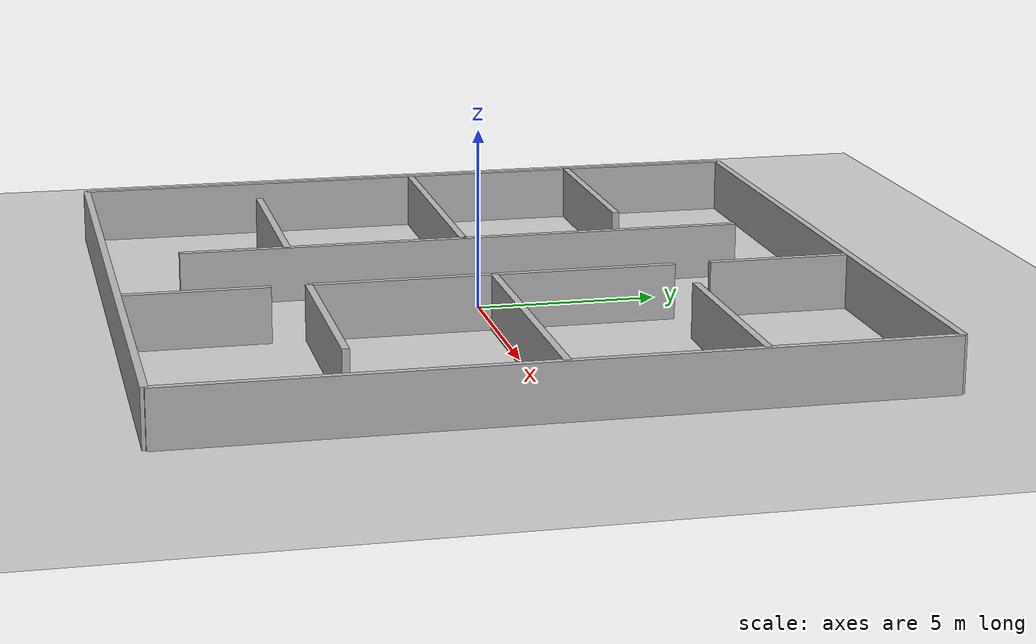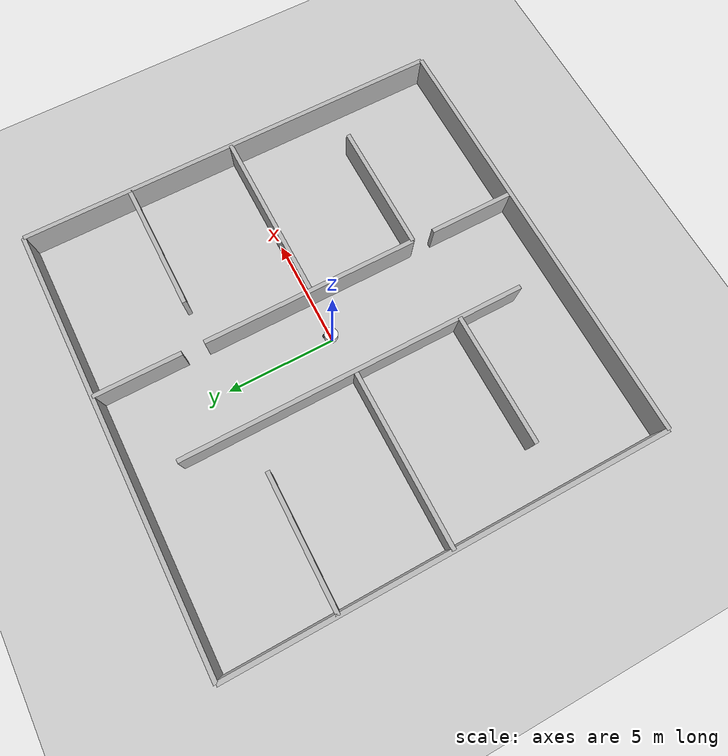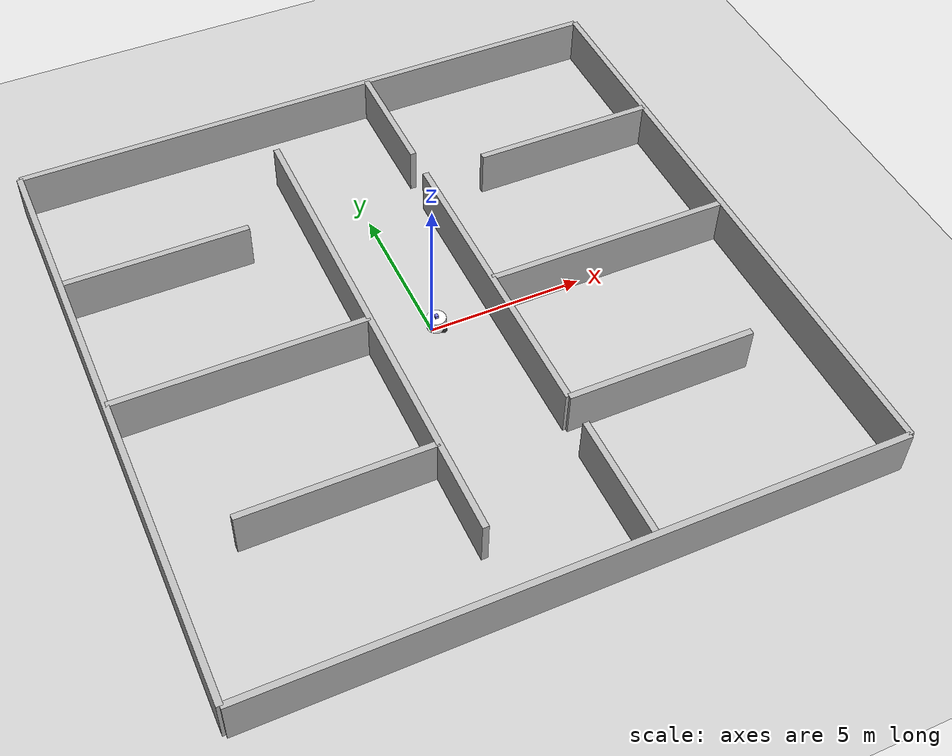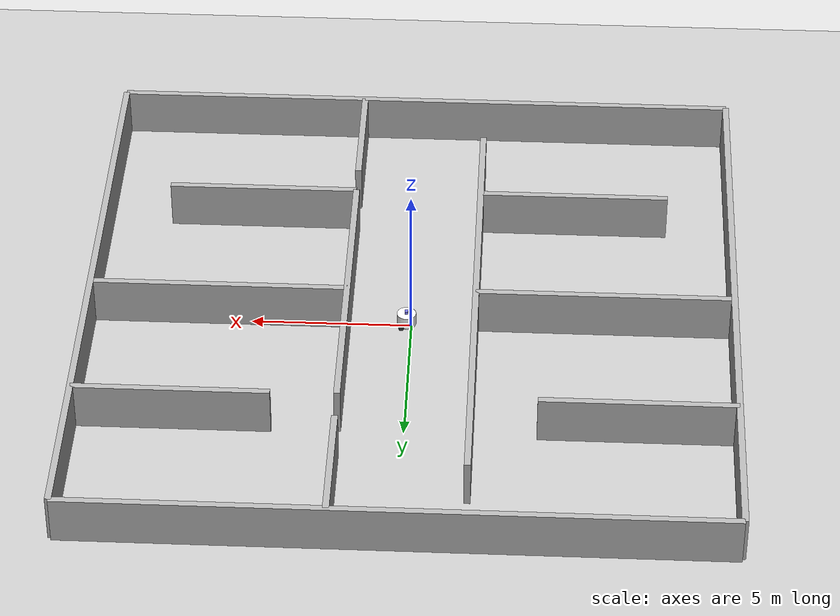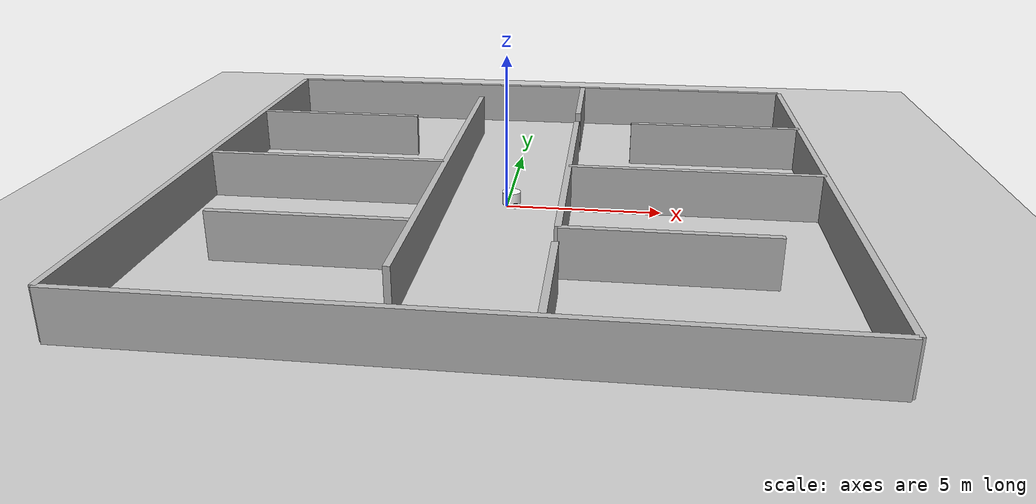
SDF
<?xml version="1.0" ?>
<sdf version="1.6">
  <world name="diff_drive">

    <physics name="1ms" type="ignored">
      <max_step_size>0.001</max_step_size>
      <real_time_factor>1.0</real_time_factor>
    </physics>
    <plugin
      filename="ignition-gazebo-physics-system"
      name="ignition::gazebo::systems::Physics">
    </plugin>
    <plugin
      filename="ignition-gazebo-user-commands-system"
      name="ignition::gazebo::systems::UserCommands">
    </plugin>
    <plugin
      filename="ignition-gazebo-scene-broadcaster-system"
      name="ignition::gazebo::systems::SceneBroadcaster">
    </plugin>

    <plugin
      filename="libignition-gazebo-sensors-system.so"
      name="ignition::gazebo::systems::Sensors">
      <render_engine>ogre</render_engine>
    </plugin>

    <light type="directional" name="sun">
      <cast_shadows>true</cast_shadows>
      <pose>0 0 10 0 0 0</pose>
      <diffuse>1 1 1 1</diffuse>
      <specular>0.5 0.5 0.5 1</specular>
      <attenuation>
        <range>1000</range>
        <constant>0.9</constant>
        <linear>0.01</linear>
        <quadratic>0.001</quadratic>
      </attenuation>
      <direction>-0.5 0.1 -0.9</direction>
    </light>

    <model name="ground_plane">
      <static>true</static>
      <link name="link">
        <collision name="collision">
          <geometry>
            <plane>
              <normal>0 0 1</normal>
            </plane>
          </geometry>
        </collision>
        <visual name="visual">
          <geometry>
            <plane>
              <normal>0 0 1</normal>
              <size>100 100</size>
            </plane>
          </geometry>
          <material>
            <ambient>0.8 0.8 0.8 1</ambient>
            <diffuse>0.8 0.8 0.8 1</diffuse>
            <specular>0.8 0.8 0.8 1</specular>
          </material>
        </visual>
      </link>
    </model>

    <model name="wall">
      <pose>10 0 0.5 0 0 0</pose>
      <link name="body">
        <collision name="collision1">
          <geometry>
            <box>
              <size>0.2 20 2</size>
            </box>
          </geometry>
        </collision>
        <visual name="visual1">
          <geometry>
            <box>
              <size>0.2 20 2</size>
            </box>
          </geometry>
        </visual>
      </link>
    </model>

    <model name="wall1">
      <pose>-10 0 0.5 0 0 0</pose>
      <link name="body">
        <collision name="collision1">
          <geometry>
            <box>
              <size>0.2 20 2</size>
            </box>
          </geometry>
        </collision>
        <visual name="visual1">
          <geometry>
            <box>
              <size>0.2 20 2</size>
            </box>
          </geometry>
        </visual>
      </link>
    </model>

    <model name="wall2">
      <pose>0 10 0.5 0 0 0</pose>
      <link name="body">
        <collision name="collision1">
          <geometry>
            <box>
              <size>20 0.2 2</size>
            </box>
          </geometry>
        </collision>
        <visual name="visual1">
          <geometry>
            <box>
              <size>20 0.2 2</size>
            </box>
          </geometry>
        </visual>
      </link>
    </model>

    <model name="wall3">
      <pose>0 -10 0.5 0 0 0</pose>
      <link name="body">
        <collision name="collision1">
          <geometry>
            <box>
              <size>20 0.2 2</size>
            </box>
          </geometry>
        </collision>
        <visual name="visual1">
          <geometry>
            <box>
              <size>20 0.2 2</size>
            </box>
          </geometry>
        </visual>
      </link>
    </model>

    <model name="roomwall">
      <pose>2 0 0.5 0 0 0</pose>
      <link name="body">
        <collision name="collision1">
          <geometry>
            <box>
              <size>0.2 10 2</size>
            </box>
          </geometry>
        </collision>
        <visual name="visual1">
          <geometry>
            <box>
              <size>0.2 10 2</size>
            </box>
          </geometry>
        </visual>
      </link>
    </model>

    <model name="roomwall2">
      <pose>6 0 0.5 0 0 0</pose>
      <link name="body">
        <collision name="collision1">
          <geometry>
            <box>
              <size>8 0.2 2</size>
            </box>
          </geometry>
        </collision>
        <visual name="visual1">
          <geometry>
            <box>
              <size>8 0.2 2</size>
            </box>
          </geometry>
        </visual>
      </link>
    </model>

    <model name="roomwall3">
      <pose>2 8 0.5 0 0 0</pose>
      <link name="body">
        <collision name="collision1">
          <geometry>
            <box>
              <size>0.2 4 2</size>
            </box>
          </geometry>
        </collision>
        <visual name="visual1">
          <geometry>
            <box>
              <size>0.2 4 2</size>
            </box>
          </geometry>
        </visual>
      </link>
    </model>

    <model name="roomwall4">
      <pose>2 -8 0.5 0 0 0</pose>
      <link name="body">
        <collision name="collision1">
          <geometry>
            <box>
              <size>0.2 4 2</size>
            </box>
          </geometry>
        </collision>
        <visual name="visual1">
          <geometry>
            <box>
              <size>0.2 4 2</size>
            </box>
          </geometry>
        </visual>
      </link>
    </model>

    <model name="roomwall5">
      <pose>-2 0 0.5 0 0 0</pose>
      <link name="body">
        <collision name="collision1">
          <geometry>
            <box>
              <size>0.2 16 2</size>
            </box>
          </geometry>
        </collision>
        <visual name="visual1">
          <geometry>
            <box>
              <size>0.2 16 2</size>
            </box>
          </geometry>
        </visual>
      </link>
    </model>

    <model name="roomwall6">
      <pose>-6 0 0.5 0 0 0</pose>
      <link name="body">
        <collision name="collision1">
          <geometry>
            <box>
              <size>8 0.2 2</size>
            </box>
          </geometry>
        </collision>
        <visual name="visual1">
          <geometry>
            <box>
              <size>8 0.2 2</size>
            </box>
          </geometry>
        </visual>
      </link>
    </model>

    <model name="roomwall7">
      <pose>7 5 0.5 0 0 0</pose>
      <link name="body">
        <collision name="collision1">
          <geometry>
            <box>
              <size>6 0.2 2</size>
            </box>
          </geometry>
        </collision>
        <visual name="visual1">
          <geometry>
            <box>
              <size>6 0.2 2</size>
            </box>
          </geometry>
        </visual>
      </link>
    </model>

    <model name="roomwall8">
      <pose>-7 5 0.5 0 0 0</pose>
      <link name="body">
        <collision name="collision1">
          <geometry>
            <box>
              <size>6 0.2 2</size>
            </box>
          </geometry>
        </collision>
        <visual name="visual1">
          <geometry>
            <box>
              <size>6 0.2 2</size>
            </box>
          </geometry>
        </visual>
      </link>
    </model>

    <model name="roomwall9">
      <pose>5 -5 0.5 0 0 0</pose>
      <link name="body">
        <collision name="collision1">
          <geometry>
            <box>
              <size>6 0.2 2</size>
            </box>
          </geometry>
        </collision>
        <visual name="visual1">
          <geometry>
            <box>
              <size>6 0.2 2</size>
            </box>
          </geometry>
        </visual>
      </link>
    </model>

    <model name="roomwall10">
      <pose>-5 -5 0.5 0 0 0</pose>
      <link name="body">
        <collision name="collision1">
          <geometry>
            <box>
              <size>6 0.2 2</size>
            </box>
          </geometry>
        </collision>
        <visual name="visual1">
          <geometry>
            <box>
              <size>6 0.2 2</size>
            </box>
          </geometry>
        </visual>
      </link>
    </model>

    <model name='vehicle_blue'>
      <pose>0 0  0.325 0 -0 0</pose>

      <link name='chassis'>
        <pose>0.151427 -0 0.00 0 -0 0</pose>
        <inertial>
          <mass>1.14395</mass>
          <inertia>
            <ixx>0.126164</ixx>
            <ixy>0</ixy>
            <ixz>0</ixz>
            <iyy>0.416519</iyy>
            <iyz>0</iyz>
            <izz>0.481014</izz>
          </inertia>
        </inertial>
        <visual name='visual'>
          <geometry>
            <cylinder>
              <radius> 0.3 </radius>
              <length> 0.4 </length>
            </cylinder>
          </geometry>
          <material>
            <ambient>1.5 1.5 1.0 1</ambient>
            <diffuse>1.5 1.5 1.0 1</diffuse>
            <specular>0.0 0.0 1.0 1</specular>
          </material>
        </visual>
        <collision name='collision'>
          <geometry>
            <box>
              <size>2.01142 1 0.568726</size>
            </box>
          </geometry>
        </collision>
      </link>

      <link name='left_wheel'>
        <pose>0.3 0.225029 -0.2 -1.5707 0 0</pose>
        <inertial>
          <mass>2</mass>
          <inertia>
            <ixx>0.145833</ixx>
            <ixy>0</ixy>
            <ixz>0</ixz>
            <iyy>0.145833</iyy>
            <iyz>0</iyz>
            <izz>0.125</izz>
          </inertia>
        </inertial>
        <visual name='visual'>
          <geometry>
            <sphere>
              <radius>0.1</radius>
            </sphere>
          </geometry>
          <material>
            <ambient>0.2 0.2 0.2 1</ambient>
            <diffuse>0.2 0.2 0.2 1</diffuse>
            <specular>0.2 0.2 0.2 1</specular>
          </material>
        </visual>
        <collision name='collision'>
          <geometry>
            <sphere>
              <radius>0.1</radius>
            </sphere>
          </geometry>
        </collision>
      </link>

      <link name='right_wheel'>
        <pose>0.3 -0.225029 -0.2 -1.5707 0 0</pose>
        <inertial>
          <mass>2</mass>
          <inertia>
            <ixx>0.145833</ixx>
            <ixy>0</ixy>
            <ixz>0</ixz>
            <iyy>0.145833</iyy>
            <iyz>0</iyz>
            <izz>0.125</izz>
          </inertia>
        </inertial>
        <visual name='visual'>
          <geometry>
            <sphere>
              <radius>0.1</radius>
            </sphere>
          </geometry>
          <material>
            <ambient>0.2 0.2 0.2 1</ambient>
            <diffuse>0.2 0.2 0.2 1</diffuse>
            <specular>0.2 0.2 0.2 1</specular>
          </material>
        </visual>
        <collision name='collision'>
          <geometry>
            <sphere>
              <radius>0.1</radius>
            </sphere>
          </geometry>
        </collision>
      </link>

      <link name='caster'>
        <pose>-0.0 -0 -0.2 0 -0 0</pose>
        <inertial>
          <mass>1</mass>
          <inertia>
            <ixx>0.1</ixx>
            <ixy>0</ixy>
            <ixz>0</ixz>
            <iyy>0.1</iyy>
            <iyz>0</iyz>
            <izz>0.1</izz>
          </inertia>
        </inertial>
        <visual name='visual'>
          <geometry>
            <sphere>
              <radius>0.1</radius>
            </sphere>
          </geometry>
          <material>
            <ambient>0.2 0.2 0.2 1</ambient>
            <diffuse>0.2 0.2 0.2 1</diffuse>
            <specular>0.2 0.2 0.2 1</specular>
          </material>
        </visual>
        <collision name='collision'>
          <geometry>
            <sphere>
              <radius>0.1</radius>
            </sphere>
          </geometry>
        </collision>
      </link>

      <link name='lidar'>
        <pose>0.15 -0 0.25 0 -0 0</pose>
        <inertial>
          <mass>1.14395</mass>
          <inertia>
            <ixx>0.126164</ixx>
            <ixy>0</ixy>
            <ixz>0</ixz>
            <iyy>0.416519</iyy>
            <iyz>0</iyz>
            <izz>0.481014</izz>
          </inertia>
        </inertial>
        <visual name='visual'>
          <geometry>
            <box>
              <size>0.1 0.11 0.1</size>
            </box>
          </geometry>
          <material>
            <ambient>0.5 0.5 1.0 1</ambient>
            <diffuse>0.5 0.5 1.0 1</diffuse>
            <specular>0.0 0.0 1.0 1</specular>
          </material>
        </visual>
        <sensor name='gpu_lidar' type='gpu_lidar'>
          <topic>lidar</topic>
          <update_rate>100</update_rate>
          <lidar>
            <scan>
              <horizontal>
                <samples>640</samples>
                <resolution>1</resolution>
                <min_angle>-3.14</min_angle>
                <max_angle>3.14</max_angle>
              </horizontal>
              <vertical>
                <samples>16</samples>
                <resolution>1</resolution>
                <min_angle>-0.261799</min_angle>
                <max_angle>0.261799</max_angle>
              </vertical>
            </scan>
            <range>
              <min>0.08</min>
              <max>10.0</max>
              <resolution>0.01</resolution>
            </range>
          </lidar>
          <alwaysOn>1</alwaysOn>
          <visualize>true</visualize>
        </sensor>
      </link>

      <joint name='left_wheel_joint' type='revolute'>
        <parent>chassis</parent>
        <child>left_wheel</child>
        <axis>
          <xyz>0 0 1</xyz>
          <limit>
            <lower>-1.79769e+308</lower>
            <upper>1.79769e+308</upper>
          </limit>
        </axis>
      </joint>

       <joint name='lidar_joint' type='fixed'>
        <parent>chassis</parent>
        <child>lidar</child>
        <axis>
          <xyz>0 0 1</xyz>
          <limit>
            <lower>-1.79769e+308</lower>
            <upper>1.79769e+308</upper>
          </limit>
        </axis>
      </joint>

      <joint name='right_wheel_joint' type='revolute'>
        <parent>chassis</parent>
        <child>right_wheel</child>
        <axis>
          <xyz>0 0 1</xyz>
          <limit>
            <lower>-1.79769e+308</lower>
            <upper>1.79769e+308</upper>
          </limit>
        </axis>
      </joint>

      <joint name='caster_wheel' type='ball'>
        <parent>chassis</parent>
        <child>caster</child>
      </joint>

      <plugin
        filename="ignition-gazebo-diff-drive-system"
        name="ignition::gazebo::systems::DiffDrive">
        <left_joint>left_wheel_joint</left_joint>
        <right_joint>right_wheel_joint</right_joint>
        <wheel_separation>0.450058</wheel_separation>
        <wheel_radius>0.1</wheel_radius>
        <odom_publish_frequency>100</odom_publish_frequency>
      </plugin>

    </model>

  </world>
</sdf>
